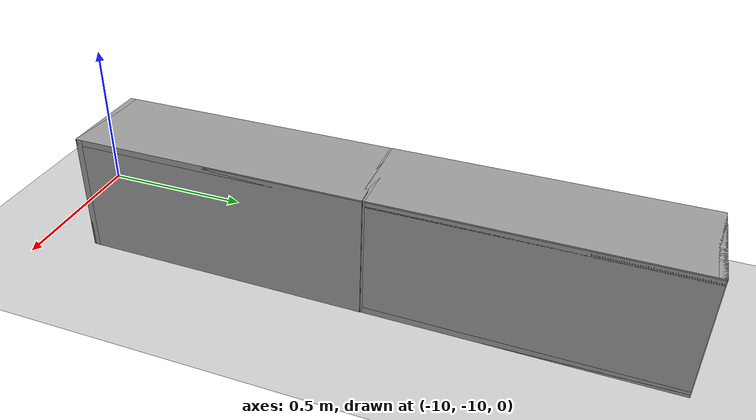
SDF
<sdf version="1.7">
 <world name="default">
  <model name="ground_plane">
   <static>1</static>
   <link name="link">
    <collision name="collision">
     <geometry><plane><normal>0 0 1</normal><size>100 100</size></plane></geometry>
     <surface><friction><ode><mu>100</mu><mu2>50</mu2></ode></friction></surface>
    </collision>
    <visual name="visual">
     <cast_shadows>0</cast_shadows>
     <geometry><plane><normal>0 0 1</normal><size>100 100</size></plane></geometry>
     <material>
      <script><uri>file://media/materials/scripts/gazebo.material</uri><name>Gazebo/Grey</name></script>
     </material>
    </visual>
   </link>
  </model>
  <model name="Wall_Cabinet_36x15W">
   <link name="Wall_0">
    <pose>0 0 0.01 0 -0 0</pose>
    <inertial>
     <mass>1.9796</mass>
     <inertia><ixx>0.0145</ixx><iyy>0.1511</iyy><izz>0.1367</izz><ixy>0</ixy><ixz>0</ixz><iyz>0</iyz></inertia>
    </inertial>
    <collision name="Wall_0_Collision"><geometry><box><size>0.91 0.296 0.02</size></box></geometry></collision>
    <visual name="Wall_0_Visual">
     <geometry><box><size>0.91 0.296 0.02</size></box></geometry>
     <material>
      <script><uri>file://media/materials/scripts/gazebo.material</uri><name>Gazebo/Grey</name></script>
      <ambient>1 1 1 1</ambient>
     </material>
    </visual>
   </link>
   <joint name="0_2" type="fixed">
    <pose>-0.455 0 0 0 -0 0</pose>
    <parent>Wall_2</parent>
    <child>Wall_0</child>
    <axis><xyz>0 0 1</xyz><limit><lower>-1e+16</lower><upper>1e+16</upper></limit></axis>
   </joint>
   <joint name="0_4" type="fixed">
    <pose>0.455 0 0 0 -0 0</pose>
    <parent>Wall_4</parent>
    <child>Wall_0</child>
    <axis><xyz>0 0 1</xyz><limit><lower>-1e+16</lower><upper>1e+16</upper></limit></axis>
   </joint>
   <joint name="0_8" type="fixed">
    <pose>0 -0.148 0 0 -0 0</pose>
    <parent>Wall_8</parent>
    <child>Wall_0</child>
    <axis><xyz>0 0 1</xyz><limit><lower>-1e+16</lower><upper>1e+16</upper></limit></axis>
   </joint>
   <link name="Wall_2">
    <pose>-0.445 0 0.192 0 -0 0</pose>
    <inertial>
     <mass>0.8353</mass>
     <inertia><ixx>0.0061</ixx><iyy>0.0164</iyy><izz>0.0103</izz><ixy>0</ixy><ixz>0</ixz><iyz>0</iyz></inertia>
    </inertial>
    <collision name="Wall_2_Collision"><geometry><box><size>0.02 0.296 0.384</size></box></geometry></collision>
    <visual name="Wall_2_Visual">
     <geometry><box><size>0.02 0.296 0.384</size></box></geometry>
     <material>
      <script><uri>file://media/materials/scripts/gazebo.material</uri><name>Gazebo/Grey</name></script>
      <ambient>1 1 1 1</ambient>
     </material>
    </visual>
   </link>
   <link name="Wall_4">
    <pose>0.445 0 0.192 0 -0 0</pose>
    <inertial>
     <mass>0.8353</mass>
     <inertia><ixx>0.0061</ixx><iyy>0.0164</iyy><izz>0.0103</izz><ixy>0</ixy><ixz>0</ixz><iyz>0</iyz></inertia>
    </inertial>
    <collision name="Wall_4_Collision"><geometry><box><size>0.02 0.296 0.384</size></box></geometry></collision>
    <visual name="Wall_4_Visual">
     <geometry><box><size>0.02 0.296 0.384</size></box></geometry>
     <material>
      <script><uri>file://media/materials/scripts/gazebo.material</uri><name>Gazebo/Grey</name></script>
      <ambient>1 1 1 1</ambient>
     </material>
    </visual>
   </link>
   <link name="Wall_6">
    <pose>0 0 0.374 0 -0 0</pose>
    <inertial>
     <mass>1.9796</mass>
     <inertia><ixx>0.0145</ixx><iyy>0.1511</iyy><izz>0.1367</izz><ixy>0</ixy><ixz>0</ixz><iyz>0</iyz></inertia>
    </inertial>
    <collision name="Wall_6_Collision"><geometry><box><size>0.91 0.296 0.02</size></box></geometry></collision>
    <visual name="Wall_6_Visual">
     <geometry><box><size>0.91 0.296 0.02</size></box></geometry>
     <material>
      <script><uri>file://media/materials/scripts/gazebo.material</uri><name>Gazebo/Grey</name></script>
      <ambient>1 1 1 1</ambient>
     </material>
    </visual>
   </link>
   <joint name="6_2" type="fixed">
    <pose>-0.455 0 0 0 -0 0</pose>
    <parent>Wall_2</parent>
    <child>Wall_6</child>
    <axis><xyz>0 0 1</xyz><limit><lower>-1e+16</lower><upper>1e+16</upper></limit></axis>
   </joint>
   <joint name="6_4" type="fixed">
    <pose>0.455 0 0 0 -0 0</pose>
    <parent>Wall_4</parent>
    <child>Wall_6</child>
    <axis><xyz>0 0 1</xyz><limit><lower>-1e+16</lower><upper>1e+16</upper></limit></axis>
   </joint>
   <joint name="6_8" type="fixed">
    <pose>0 -0.148 0 0 -0 0</pose>
    <parent>Wall_8</parent>
    <child>Wall_6</child>
    <axis><xyz>0 0 1</xyz><limit><lower>-1e+16</lower><upper>1e+16</upper></limit></axis>
   </joint>
   <link name="Wall_8">
    <pose>0 -0.138 0.19 0 -0 0</pose>
    <inertial>
     <mass>2.5302</mass>
     <inertia><ixx>0.0305</ixx><iyy>0.1732</iyy><izz>0.2035</izz><ixy>0</ixy><ixz>0</ixz><iyz>0</iyz></inertia>
    </inertial>
    <collision name="Wall_8_Collision"><geometry><box><size>0.906 0.02 0.38</size></box></geometry></collision>
    <visual name="Wall_8_Visual">
     <geometry><box><size>0.906 0.02 0.38</size></box></geometry>
     <material>
      <script><uri>file://media/materials/scripts/gazebo.material</uri><name>Gazebo/Grey</name></script>
      <ambient>1 1 1 1</ambient>
     </material>
    </visual>
   </link>
   <joint name="8_2" type="fixed">
    <pose>-0.453 0 0 0 -0 0</pose>
    <parent>Wall_2</parent>
    <child>Wall_8</child>
    <axis><xyz>0 1 0</xyz><limit><lower>-1e+16</lower><upper>1e+16</upper></limit></axis>
   </joint>
   <joint name="8_4" type="fixed">
    <pose>0.453 0 0 0 -0 0</pose>
    <parent>Wall_4</parent>
    <child>Wall_8</child>
    <axis><xyz>0 1 0</xyz><limit><lower>-1e+16</lower><upper>1e+16</upper></limit></axis>
   </joint>
   <static>1</static>
   <pose>-9.701 -9.32949 0.047595 0 -0 1.56456</pose>
  </model>
  <model name="Wall_Cabinet_36x15W_clone">
   <link name="Wall_0">
    <pose>0 0 0.01 0 -0 0</pose>
    <inertial>
     <mass>1.9796</mass>
     <inertia><ixx>0.0145</ixx><iyy>0.1511</iyy><izz>0.1367</izz><ixy>0</ixy><ixz>0</ixz><iyz>0</iyz></inertia>
    </inertial>
    <collision name="Wall_0_Collision"><geometry><box><size>0.91 0.296 0.02</size></box></geometry></collision>
    <visual name="Wall_0_Visual">
     <geometry><box><size>0.91 0.296 0.02</size></box></geometry>
     <material>
      <script><uri>file://media/materials/scripts/gazebo.material</uri><name>Gazebo/Grey</name></script>
      <ambient>1 1 1 1</ambient>
     </material>
    </visual>
   </link>
   <joint name="0_2" type="fixed">
    <pose>-0.455 0 0 0 -0 0</pose>
    <parent>Wall_2</parent>
    <child>Wall_0</child>
    <axis><xyz>0 0 1</xyz><limit><lower>-1e+16</lower><upper>1e+16</upper></limit></axis>
   </joint>
   <joint name="0_4" type="fixed">
    <pose>0.455 0 0 0 -0 0</pose>
    <parent>Wall_4</parent>
    <child>Wall_0</child>
    <axis><xyz>0 0 1</xyz><limit><lower>-1e+16</lower><upper>1e+16</upper></limit></axis>
   </joint>
   <joint name="0_8" type="fixed">
    <pose>0 -0.148 0 0 -0 0</pose>
    <parent>Wall_8</parent>
    <child>Wall_0</child>
    <axis><xyz>0 0 1</xyz><limit><lower>-1e+16</lower><upper>1e+16</upper></limit></axis>
   </joint>
   <link name="Wall_2">
    <pose>-0.445 0 0.192 0 -0 0</pose>
    <inertial>
     <mass>0.8353</mass>
     <inertia><ixx>0.0061</ixx><iyy>0.0164</iyy><izz>0.0103</izz><ixy>0</ixy><ixz>0</ixz><iyz>0</iyz></inertia>
    </inertial>
    <collision name="Wall_2_Collision"><geometry><box><size>0.02 0.296 0.384</size></box></geometry></collision>
    <visual name="Wall_2_Visual">
     <geometry><box><size>0.02 0.296 0.384</size></box></geometry>
     <material>
      <script><uri>file://media/materials/scripts/gazebo.material</uri><name>Gazebo/Grey</name></script>
      <ambient>1 1 1 1</ambient>
     </material>
    </visual>
   </link>
   <link name="Wall_4">
    <pose>0.445 0 0.192 0 -0 0</pose>
    <inertial>
     <mass>0.8353</mass>
     <inertia><ixx>0.0061</ixx><iyy>0.0164</iyy><izz>0.0103</izz><ixy>0</ixy><ixz>0</ixz><iyz>0</iyz></inertia>
    </inertial>
    <collision name="Wall_4_Collision"><geometry><box><size>0.02 0.296 0.384</size></box></geometry></collision>
    <visual name="Wall_4_Visual">
     <geometry><box><size>0.02 0.296 0.384</size></box></geometry>
     <material>
      <script><uri>file://media/materials/scripts/gazebo.material</uri><name>Gazebo/Grey</name></script>
      <ambient>1 1 1 1</ambient>
     </material>
    </visual>
   </link>
   <link name="Wall_6">
    <pose>0 0 0.374 0 -0 0</pose>
    <inertial>
     <mass>1.9796</mass>
     <inertia><ixx>0.0145</ixx><iyy>0.1511</iyy><izz>0.1367</izz><ixy>0</ixy><ixz>0</ixz><iyz>0</iyz></inertia>
    </inertial>
    <collision name="Wall_6_Collision"><geometry><box><size>0.91 0.296 0.02</size></box></geometry></collision>
    <visual name="Wall_6_Visual">
     <geometry><box><size>0.91 0.296 0.02</size></box></geometry>
     <material>
      <script><uri>file://media/materials/scripts/gazebo.material</uri><name>Gazebo/Grey</name></script>
      <ambient>1 1 1 1</ambient>
     </material>
    </visual>
   </link>
   <joint name="6_2" type="fixed">
    <pose>-0.455 0 0 0 -0 0</pose>
    <parent>Wall_2</parent>
    <child>Wall_6</child>
    <axis><xyz>0 0 1</xyz><limit><lower>-1e+16</lower><upper>1e+16</upper></limit></axis>
   </joint>
   <joint name="6_4" type="fixed">
    <pose>0.455 0 0 0 -0 0</pose>
    <parent>Wall_4</parent>
    <child>Wall_6</child>
    <axis><xyz>0 0 1</xyz><limit><lower>-1e+16</lower><upper>1e+16</upper></limit></axis>
   </joint>
   <joint name="6_8" type="fixed">
    <pose>0 -0.148 0 0 -0 0</pose>
    <parent>Wall_8</parent>
    <child>Wall_6</child>
    <axis><xyz>0 0 1</xyz><limit><lower>-1e+16</lower><upper>1e+16</upper></limit></axis>
   </joint>
   <link name="Wall_8">
    <pose>0 -0.138 0.19 0 -0 0</pose>
    <inertial>
     <mass>2.5302</mass>
     <inertia><ixx>0.0305</ixx><iyy>0.1732</iyy><izz>0.2035</izz><ixy>0</ixy><ixz>0</ixz><iyz>0</iyz></inertia>
    </inertial>
    <collision name="Wall_8_Collision"><geometry><box><size>0.906 0.02 0.38</size></box></geometry></collision>
    <visual name="Wall_8_Visual">
     <geometry><box><size>0.906 0.02 0.38</size></box></geometry>
     <material>
      <script><uri>file://media/materials/scripts/gazebo.material</uri><name>Gazebo/Grey</name></script>
      <ambient>1 1 1 1</ambient>
     </material>
    </visual>
   </link>
   <joint name="8_2" type="fixed">
    <pose>-0.453 0 0 0 -0 0</pose>
    <parent>Wall_2</parent>
    <child>Wall_8</child>
    <axis><xyz>0 1 0</xyz><limit><lower>-1e+16</lower><upper>1e+16</upper></limit></axis>
   </joint>
   <joint name="8_4" type="fixed">
    <pose>0.453 0 0 0 -0 0</pose>
    <parent>Wall_4</parent>
    <child>Wall_8</child>
    <axis><xyz>0 1 0</xyz><limit><lower>-1e+16</lower><upper>1e+16</upper></limit></axis>
   </joint>
   <static>1</static>
   <pose>-9.69653 -8.43388 0.047595 0 -0 1.56456</pose>
  </model>
 </world>
</sdf>
